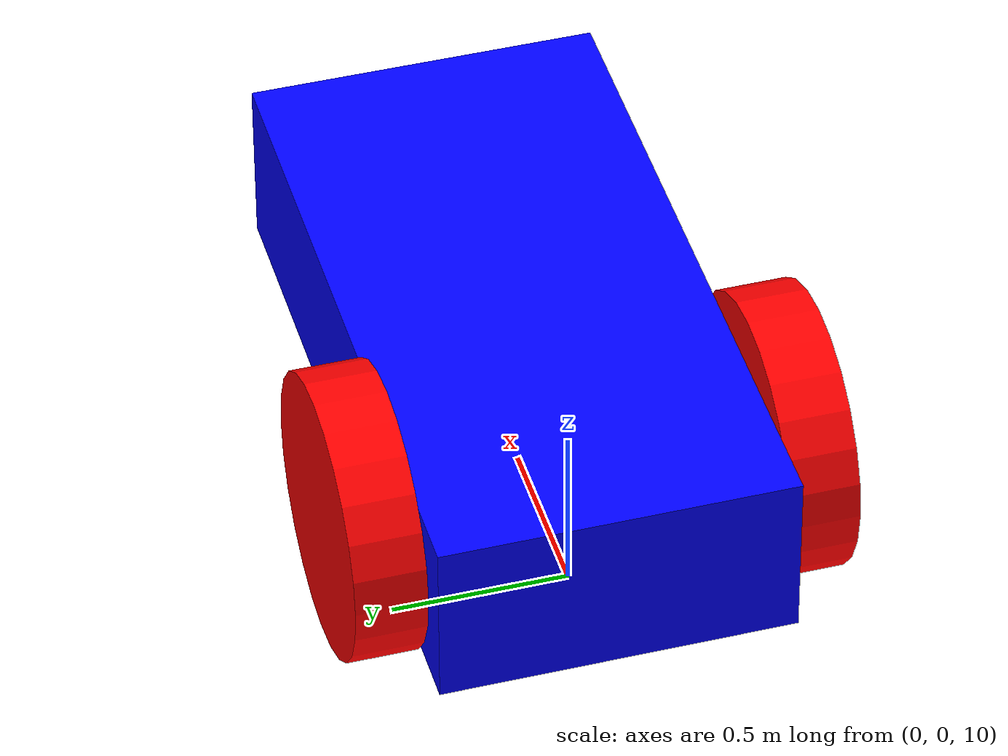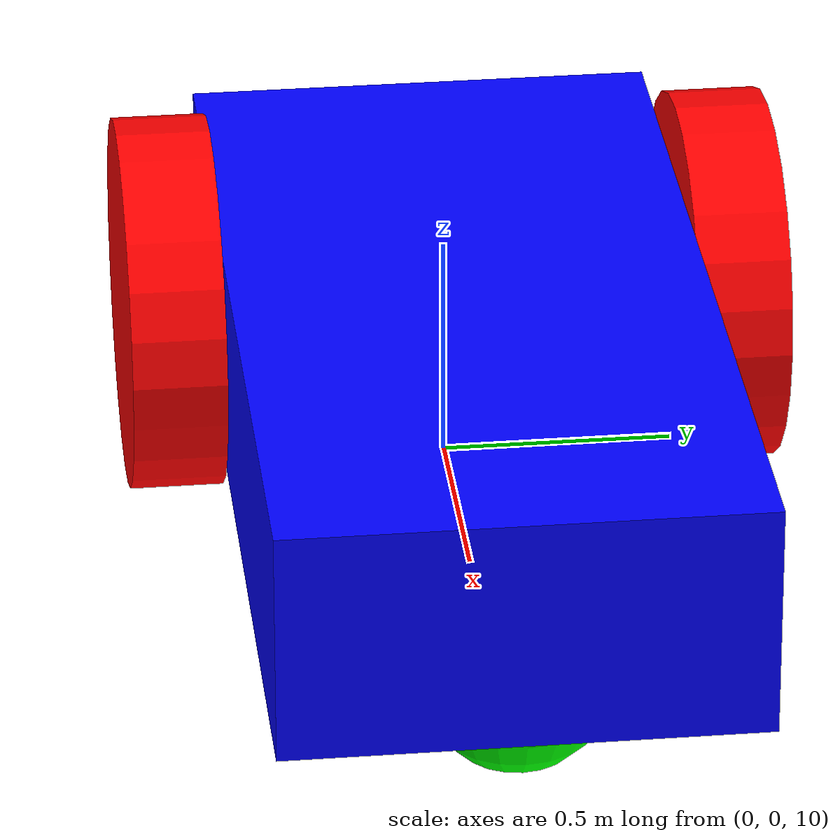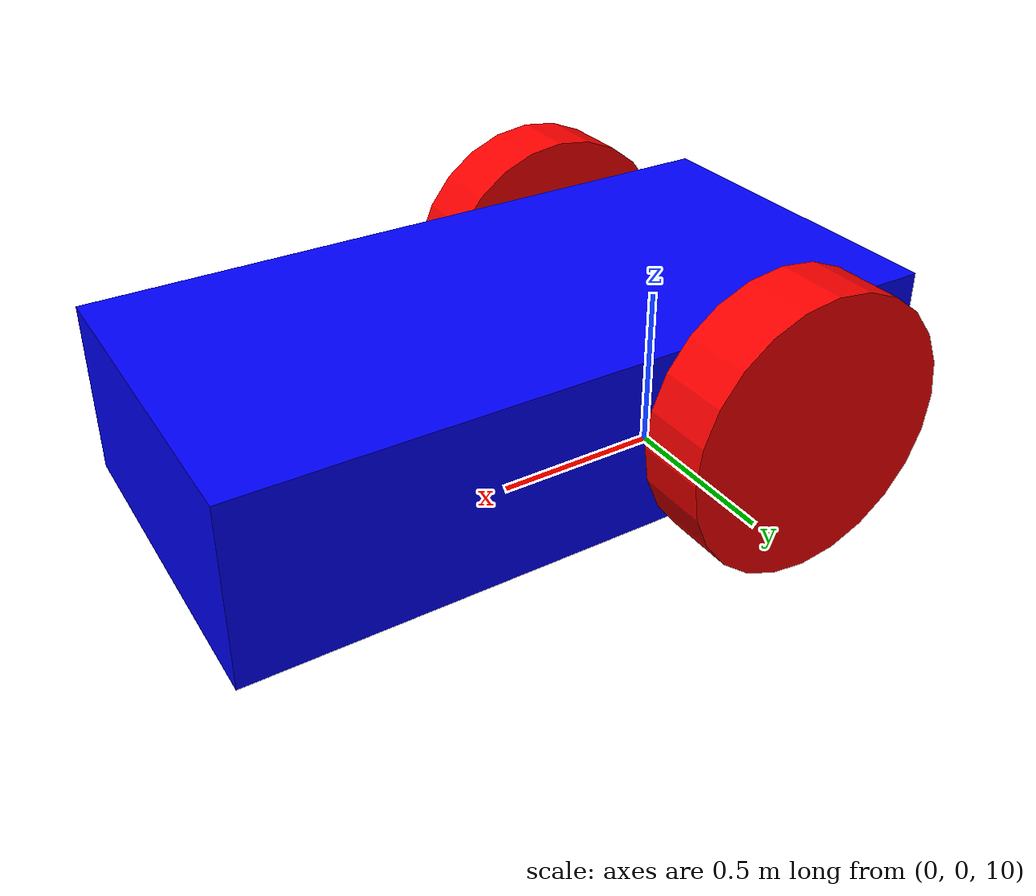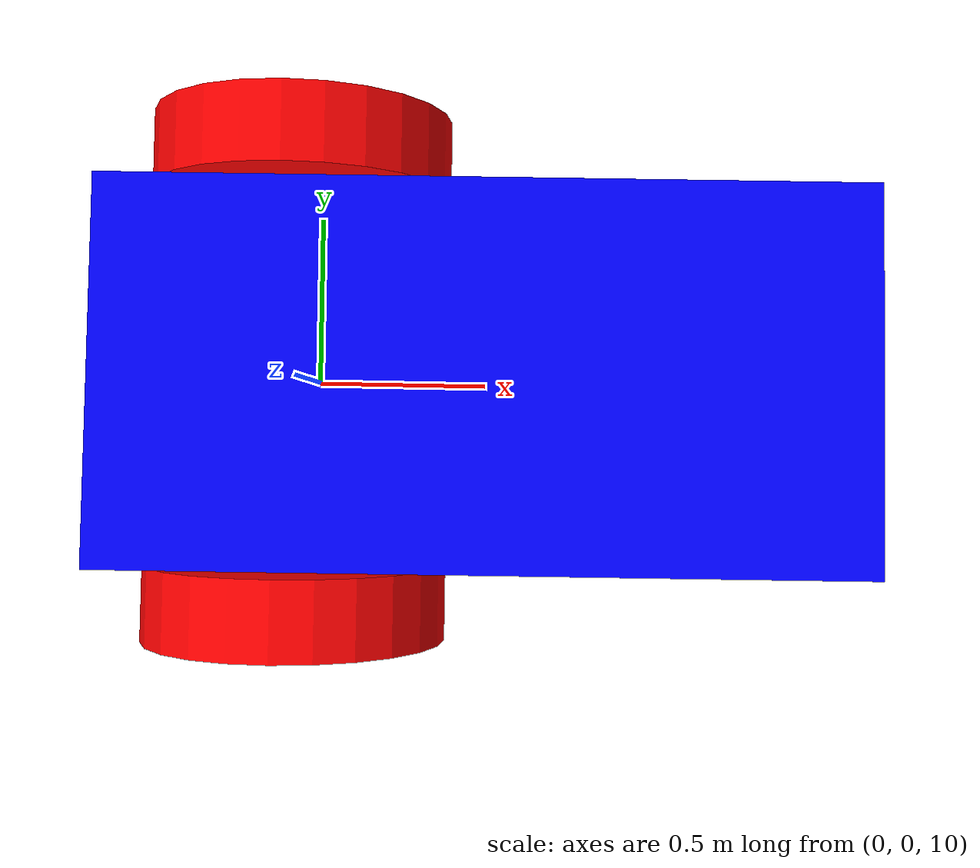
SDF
<?xml version="1.0" ?>
<sdf version="1.7">
    <world name="car_world">
        <physics name="1ms" type="ignored">
            <max_step_size>0.001</max_step_size>
            <real_time_factor>1.0</real_time_factor>
        </physics>
        <plugin
            filename="ignition-gazebo-physics-system"
            name="ignition::gazebo::systems::Physics">
        </plugin>
        <plugin
            filename="ignition-gazebo-user-commands-system"
            name="ignition::gazebo::systems::UserCommands">
        </plugin>
        <plugin
            filename="ignition-gazebo-scene-broadcaster-system"
            name="ignition::gazebo::systems::SceneBroadcaster">
        </plugin>

        <plugin
          filename="ignition-gazebo-particle-emitter2-system"
          name="ignition::gazebo::systems::ParticleEmitter2">
        </plugin>

        <gui fullscreen="0">

            <!-- 3D scene -->
            <plugin filename="GzScene3D" name="3D View">
                <ignition-gui>
                <title>3D View</title>
                <property type="bool" key="showTitleBar">false</property>
                <property type="string" key="state">docked</property>
                </ignition-gui>

                <engine>ogre2</engine>
                <scene>scene</scene>
                <ambient_light>0.4 0.4 0.4</ambient_light>
                <background_color>0.8 0.8 0.8</background_color>
            </plugin>

            <!-- World control -->
            <plugin filename="WorldControl" name="World control">
                <ignition-gui>
                <title>World control</title>
                <property type="bool" key="showTitleBar">false</property>
                <property type="bool" key="resizable">false</property>
                <property type="double" key="height">72</property>
                <property type="double" key="width">121</property>
                <property type="double" key="z">1</property>

                <property type="string" key="state">floating</property>
                <anchors target="3D View">
                    <line own="left" target="left"/>
                    <line own="bottom" target="bottom"/>
                </anchors>
                </ignition-gui>

                <play_pause>true</play_pause>
                <step>true</step>
                <start_paused>true</start_paused>
                <service>/world/car_world/control</service>
                <stats_topic>/world/car_world/stats</stats_topic>
            </plugin>

            <!-- World statistics -->
            <plugin filename="WorldStats" name="World stats">
                <ignition-gui>
                <title>World stats</title>
                <property type="bool" key="showTitleBar">false</property>
                <property type="bool" key="resizable">false</property>
                <property type="double" key="height">110</property>
                <property type="double" key="width">290</property>
                <property type="double" key="z">1</property>

                <property type="string" key="state">floating</property>
                <anchors target="3D View">
                    <line own="right" target="right"/>
                    <line own="bottom" target="bottom"/>
                </anchors>
                </ignition-gui>

                <sim_time>true</sim_time>
                <real_time>true</real_time>
                <real_time_factor>true</real_time_factor>
                <iterations>true</iterations>
                <topic>/world/car_world/stats</topic>

            </plugin>

            <!-- Entity tree -->
            <plugin filename="EntityTree" name="Entity tree">
            </plugin>

        </gui>

        <light type="directional" name="sun">
            <cast_shadows>true</cast_shadows>
            <pose>0 0 10 0 0 0</pose>
            <diffuse>0.8 0.8 0.8 1</diffuse>
            <specular>0.2 0.2 0.2 1</specular>
            <attenuation>
                <range>1000</range>
                <constant>0.9</constant>
                <linear>0.01</linear>
                <quadratic>0.001</quadratic>
            </attenuation>
            <direction>-0.5 0.1 -0.9</direction>
        </light>

        <model name="ground_plane">
            <pose relative_to='world'>0 0 5.0 0 0 0</pose>
            <static>true</static>
            <link name="link">
                <collision name="collision">
                <geometry>
                    <plane>
                    <normal>0 0 1</normal>
                    </plane>
                </geometry>
                </collision>
                <visual name="visual">
                <geometry>
                    <plane>
                    <normal>0 0 1</normal>
                    <size>100 100</size>
                    </plane>
                </geometry>
                <material>
                    <ambient>0.8 0.8 0.8 1</ambient>
                    <diffuse>0.8 0.8 0.8 1</diffuse>
                    <specular>0.8 0.8 0.8 1</specular>
                </material>
                </visual>
            </link>
        </model>

        <model name="ground_plane2">
            <pose relative_to='world'>0 0 0 0 0 0</pose>
            <static>true</static>
            <link name="link">
                <collision name="collision">
                <geometry>
                    <plane>
                    <normal>0 0 1</normal>
                    </plane>
                </geometry>
                </collision>
                <visual name="visual">
                <geometry>
                    <plane>
                    <normal>0 0 1</normal>
                    <size>100 100</size>
                    </plane>
                </geometry>
                <material>
                    <ambient>0.8 0.8 0.8 1</ambient>
                    <diffuse>0.8 0.8 0.8 1</diffuse>
                    <specular>0.8 0.8 0.8 1</specular>
                </material>
                </visual>
            </link>
        </model>

        <model name='vehicle_blue' canonical_link='chassis'>
            <pose relative_to='world'>0 0 10.0 0 0 0</pose>   <!--the pose is relative to the world by default-->

            <!--chassis-->
            <link name='chassis'>
                <pose relative_to='__model__'>0.5 0 0.4 0 0 0</pose>
                <inertial> <!--inertial properties of the link mass, inertia matix-->
                    <mass>1.14395</mass>
                    <inertia>
                        <ixx>0.095329</ixx>
                        <ixy>0</ixy>
                        <ixz>0</ixz>
                        <iyy>0.381317</iyy>
                        <iyz>0</iyz>
                        <izz>0.476646</izz>
                    </inertia>
                </inertial>
                <visual name='visual'>
                    <geometry>
                        <box>
                            <size>2.0 1.0 0.5</size>
                        </box>
                    </geometry>
                    <!--Color of the link-->
                    <material>
                        <ambient>0.0 0.0 1.0 1</ambient>
                        <diffuse>0.0 0.0 1.0 1</diffuse>
                        <specular>0.0 0.0 1.0 1</specular>
                    </material>
                </visual>
                <collision name='collision'>
                    <geometry>
                        <box>
                            <size>2.0 1.0 0.5</size>
                        </box>
                    </geometry>
                </collision>
            </link>

            <!--Left wheel-->
            <link name='left_wheel'>
                <pose relative_to="chassis">-0.5 0.6 0 -1.5707 0 0</pose> <!--angles are in radian-->
                <inertial>
                    <mass>1</mass>
                    <inertia>
                        <ixx>0.043333</ixx>
                        <ixy>0</ixy>
                        <ixz>0</ixz>
                        <iyy>0.043333</iyy>
                        <iyz>0</iyz>
                        <izz>0.08</izz>
                    </inertia>
                </inertial>
                <visual name='visual'>
                    <geometry>
                        <cylinder>
                            <radius>0.4</radius>
                            <length>0.2</length>
                        </cylinder>
                    </geometry>
                    <material>
                        <ambient>1.0 0.0 0.0 1</ambient>
                        <diffuse>1.0 0.0 0.0 1</diffuse>
                        <specular>1.0 0.0 0.0 1</specular>
                    </material>
                </visual>
                <collision name='collision'>
                    <geometry>
                        <cylinder>
                            <radius>0.4</radius>
                            <length>0.2</length>
                        </cylinder>
                    </geometry>
                </collision>
            </link>

            <!--The same as left wheel but with different position-->
            <link name='right_wheel'>
                <pose relative_to="chassis">-0.5 -0.6 0 -1.5707 0 0</pose> <!--angles are in radian-->
                <inertial>
                    <mass>1</mass>
                    <inertia>
                        <ixx>0.043333</ixx>
                        <ixy>0</ixy>
                        <ixz>0</ixz>
                        <iyy>0.043333</iyy>
                        <iyz>0</iyz>
                        <izz>0.08</izz>
                    </inertia>
                </inertial>
                <visual name='visual'>
                    <geometry>
                        <cylinder>
                            <radius>0.4</radius>
                            <length>0.2</length>
                        </cylinder>
                    </geometry>
                    <material>
                        <ambient>1.0 0.0 0.0 1</ambient>
                        <diffuse>1.0 0.0 0.0 1</diffuse>
                        <specular>1.0 0.0 0.0 1</specular>
                    </material>
                </visual>
                <collision name='collision'>
                    <geometry>
                        <cylinder>
                            <radius>0.4</radius>
                            <length>0.2</length>
                        </cylinder>
                    </geometry>
                </collision>
            </link>

            <!--arbitrary frame-->
            <frame name="caster_frame" attached_to='chassis'>
                <pose>0.8 0 -0.2 0 0 0</pose>
            </frame>

            <!--caster wheel-->
            <link name='caster'>
                <pose relative_to='caster_frame'/>
                <inertial>
                    <mass>1</mass>
                    <inertia>
                        <ixx>0.016</ixx>
                        <ixy>0</ixy>
                        <ixz>0</ixz>
                        <iyy>0.016</iyy>
                        <iyz>0</iyz>
                        <izz>0.016</izz>
                    </inertia>
                </inertial>
                <visual name='visual'>
                    <geometry>
                        <sphere>
                            <radius>0.2</radius>
                        </sphere>
                    </geometry>
                    <material>
                        <ambient>0.0 1 0.0 1</ambient>
                        <diffuse>0.0 1 0.0 1</diffuse>
                        <specular>0.0 1 0.0 1</specular>
                    </material>
                </visual>
                <collision name='collision'>
                    <geometry>
                        <sphere>
                            <radius>0.2</radius>
                        </sphere>
                    </geometry>
                </collision>
            </link>

            <!--left wheel joint-->
            <joint name='left_wheel_joint' type='revolute'>
                <pose relative_to='left_wheel'/>
                <parent>chassis</parent>
                <child>left_wheel</child>
                <axis>
                    <xyz expressed_in='__model__'>0 1 0</xyz> <!--can be descired to any frame or even arbitrary frames-->
                    <limit>
                        <lower>-1.79769e+308</lower>    <!--negative infinity-->
                        <upper>1.79769e+308</upper>     <!--positive infinity-->
                    </limit>
                </axis>
            </joint>

            <!--right wheel joint-->
            <joint name='right_wheel_joint' type='revolute'>
                <pose relative_to='right_wheel'/>
                <parent>chassis</parent>
                <child>right_wheel</child>
                <axis>
                    <xyz expressed_in='__model__'>0 1 0</xyz>
                    <limit>
                        <lower>-1.79769e+308</lower>    <!--negative infinity-->
                        <upper>1.79769e+308</upper>     <!--positive infinity-->
                    </limit>
                </axis>
            </joint>

            <!--caster wheel joint--> <!--pose defult value is the child-->
            <joint name='caster_wheel' type='ball'>
                <parent>chassis</parent>
                <child>caster</child>
            </joint>
        </model>
    </world>
</sdf>
